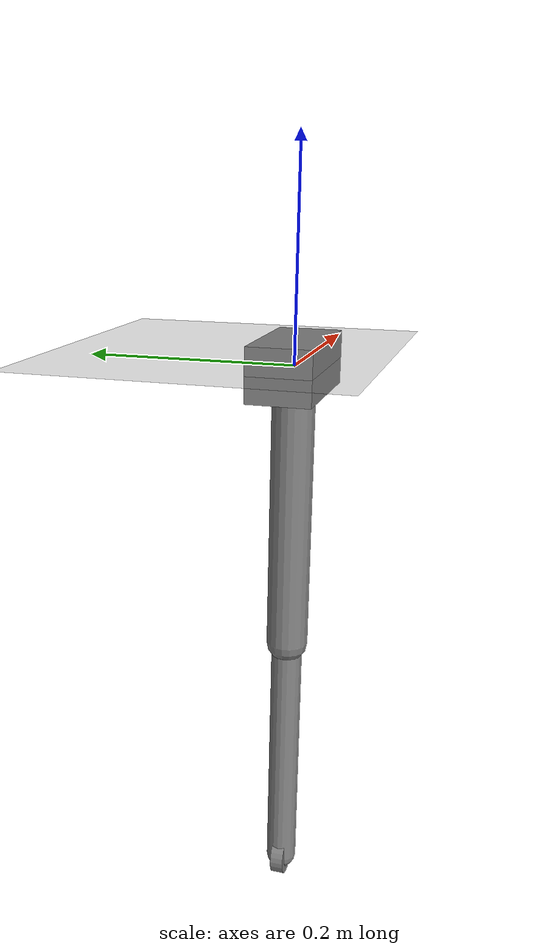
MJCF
<mujoco model="fourbar_flip">
<option cone="elliptic" impratio="100" gravity="0 0 -9.81" timestep="0.0005" integrator="implicitfast"/>
<default><default class="leg">
  <geom friction="1.00000 0.02000 0.01000" margin="0.001" condim="6"/>
  <joint axis="0 1 0"/>
  <motor ctrlrange="-200 200" ctrllimited="false"/>
  <default class="foot">
    <geom type="cylinder" size="0.0210" priority="1" solref="0.011731 1.6072" solimp="0.472998 0.72007 0.005409 0.5 2" condim="6" friction="1.00000 0.02000 0.01000" margin="0.001"/>
  </default>
</default></default>
<worldbody>
  <geom name="floor" size="0 0 0.05" type="plane" solref="0.011731 1.6072" solimp="0.472998 0.72007 0.005409 0.5 2" friction="1.00000 0.02000 0.01000" margin="0.001"/>
  <body name="base" pos="0 0 0" childclass="leg">
    <joint name="base_z" type="slide" axis="0 0 1"/>
    <inertial pos="0 0 0" mass="1.387808" diaginertia="0.005 0.005 0.005"/>
    <geom type="box" size="0.06 0.03 0.025" contype="0" conaffinity="0"/>
    <body name="hip_rotor" pos="0 0 -0.025">
      <joint name="hip_m" type="hinge" armature="0.01" damping="0.312066" frictionloss="0.238254"/>
      <inertial pos="0 0 0" mass="0.001" diaginertia="1e-07 1e-07 1e-07"/>
      <body name="thigh" pos="0 0 0">
      <joint name="hip" type="hinge" armature="0" damping="1.5" stiffness="150.0" springref="0"/>
      <inertial pos="0 0 -0.10943" mass="0.98583" diaginertia="0.003234 0.003234 0.0002"/>
      <geom type="capsule" size="0.02" fromto="0 0 0 0 0 -0.25" contype="1" conaffinity="1"/>
      <body name="crank" pos="0 0 0">
        <joint name="knee_motor" type="hinge" armature="0.00795495" damping="0.149630" frictionloss="0.246893" stiffness="0.000000" springref="1.87751"/>
        <inertial pos="0 0 0.02078" mass="0.43700" diaginertia="0.000628 0.000628 0.000628"/>
        <geom type="capsule" size="0.008" fromto="0 0 0 0 0 0.03" contype="0" conaffinity="0"/>
        <body name="coupler" pos="0 0 0.03">
          <joint name="cpin" type="hinge" damping="0.00040"/>
          <inertial pos="0 0 -0.10659" mass="0.15002" diaginertia="0.001235 0.001235 0.00005"/>
          <geom type="capsule" size="0.006" fromto="0 0 0 0 0 -0.25" contype="0" conaffinity="0"/>
        </body>
      </body>
      <body name="calf" pos="0 0 -0.25">
        <joint name="knee" type="hinge" damping="0.02309" stiffness="0.000000" springref="1.87751"/>
        <inertial pos="0 0 -0.11380" mass="0.23934" diaginertia="0.002689 0.002689 0.00005"/>
        <geom type="capsule" size="0.015" fromto="0 0 0 0 0 -0.25" contype="1" conaffinity="1"/>
        <geom name="foot" class="foot" type="cylinder" size="0.0210 0.0065" pos="0 0 -0.25" euler="90 0 0"/>
      </body>
    </body>
    </body>
  </body>
</worldbody>
<equality>
  <connect body1="coupler" body2="calf" anchor="0 0 -0.25" solref="0.00080 1"/>
</equality>
<actuator>
  <motor name="hip_motor" joint="hip_m" gear="1"/>
  <motor name="knee_motor" joint="knee_motor" gear="1"/>
</actuator>
</mujoco>
